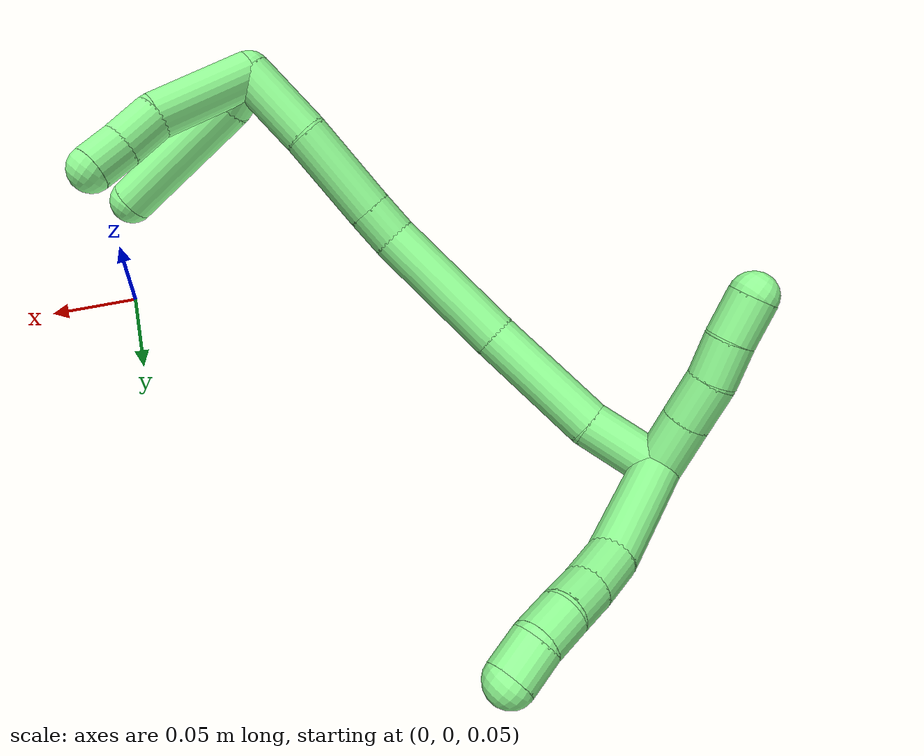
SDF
<sdf version="1.7">
 <world name="default">
  <model name="13">
   <static>0</static>
   <link name="13">
    <collision name="collision-cylinder-e_1_2_8">
     <pose>0.011531 0.019389 -0.023571 -2.45325 0.361226 -0.94234</pose>
     <geometry><cylinder><radius>0.0125</radius><length>0.065252</length></cylinder></geometry>
     <surface>
      <friction><ode><mu>1.16</mu><mu2>1.16</mu2><slip1>0</slip1><slip2>0</slip2></ode></friction>
      <contact><ode><kp>1e+06</kp><kd>1</kd><max_vel>0</max_vel><min_depth>0.001</min_depth></ode></contact>
     </surface>
    </collision>
    <visual name="visual-cylinder-e_1_2_8">
     <pose>0.011531 0.019389 -0.023571 -2.45325 0.361226 -0.94234</pose>
     <geometry><cylinder><radius>0.0125</radius><length>0.065252</length></cylinder></geometry>
     <material><ambient>0.564706 0.984314 0.572549 1</ambient></material>
    </visual>
    <collision name="collision-cylinder-e_2_8_9">
     <pose>0.029436 0.045247 -0.05533 -2.47291 0.548317 -1.36113</pose>
     <geometry><cylinder><radius>0.0125</radius><length>0.024457</length></cylinder></geometry>
     <surface>
      <friction><ode><mu>1.16</mu><mu2>1.16</mu2><slip1>0</slip1><slip2>0</slip2></ode></friction>
      <contact><ode><kp>1e+06</kp><kd>1</kd><max_vel>0</max_vel><min_depth>0.001</min_depth></ode></contact>
     </surface>
    </collision>
    <visual name="visual-cylinder-e_2_8_9">
     <pose>0.029436 0.045247 -0.05533 -2.47291 0.548317 -1.36113</pose>
     <geometry><cylinder><radius>0.0125</radius><length>0.024457</length></cylinder></geometry>
     <material><ambient>0.564706 0.984314 0.572549 1</ambient></material>
    </visual>
    <collision name="collision-cylinder-e_3_9_10">
     <pose>0.041595 0.056809 -0.069938 -2.47092 0.614743 -1.47756</pose>
     <geometry><cylinder><radius>0.0125</radius><length>0.02006</length></cylinder></geometry>
     <surface>
      <friction><ode><mu>1.16</mu><mu2>1.16</mu2><slip1>0</slip1><slip2>0</slip2></ode></friction>
      <contact><ode><kp>1e+06</kp><kd>1</kd><max_vel>0</max_vel><min_depth>0.001</min_depth></ode></contact>
     </surface>
    </collision>
    <visual name="visual-cylinder-e_3_9_10">
     <pose>0.041595 0.056809 -0.069938 -2.47092 0.614743 -1.47756</pose>
     <geometry><cylinder><radius>0.0125</radius><length>0.02006</length></cylinder></geometry>
     <material><ambient>0.564706 0.984314 0.572549 1</ambient></material>
    </visual>
    <collision name="collision-cylinder-e_4_10_11">
     <pose>0.052156 0.066099 -0.084099 -2.6448 0.496937 -1.5711</pose>
     <geometry><cylinder><radius>0.0125</radius><length>0.020038</length></cylinder></geometry>
     <surface>
      <friction><ode><mu>1.16</mu><mu2>1.16</mu2><slip1>0</slip1><slip2>0</slip2></ode></friction>
      <contact><ode><kp>1e+06</kp><kd>1</kd><max_vel>0</max_vel><min_depth>0.001</min_depth></ode></contact>
     </surface>
    </collision>
    <visual name="visual-cylinder-e_4_10_11">
     <pose>0.052156 0.066099 -0.084099 -2.6448 0.496937 -1.5711</pose>
     <geometry><cylinder><radius>0.0125</radius><length>0.020038</length></cylinder></geometry>
     <material><ambient>0.564706 0.984314 0.572549 1</ambient></material>
    </visual>
    <collision name="collision-cylinder-e_5_11_6">
     <pose>0.059065 0.073406 -0.101208 -2.82105 0.21284 -1.16786</pose>
     <geometry><cylinder><radius>0.0125</radius><length>0.020193</length></cylinder></geometry>
     <surface>
      <friction><ode><mu>1.16</mu><mu2>1.16</mu2><slip1>0</slip1><slip2>0</slip2></ode></friction>
      <contact><ode><kp>1e+06</kp><kd>1</kd><max_vel>0</max_vel><min_depth>0.001</min_depth></ode></contact>
     </surface>
    </collision>
    <visual name="visual-cylinder-e_5_11_6">
     <pose>0.059065 0.073406 -0.101208 -2.82105 0.21284 -1.16786</pose>
     <geometry><cylinder><radius>0.0125</radius><length>0.020193</length></cylinder></geometry>
     <material><ambient>0.564706 0.984314 0.572549 1</ambient></material>
    </visual>
    <collision name="collision-cylinder-e_1_2_12">
     <pose>0.004394 0.002337 0.013833 -0.167333 0.303511 -0.025649</pose>
     <geometry><cylinder><radius>0.0125</radius><length>0.029402</length></cylinder></geometry>
     <surface>
      <friction><ode><mu>1.16</mu><mu2>1.16</mu2><slip1>0</slip1><slip2>0</slip2></ode></friction>
      <contact><ode><kp>1e+06</kp><kd>1</kd><max_vel>0</max_vel><min_depth>0.001</min_depth></ode></contact>
     </surface>
    </collision>
    <visual name="visual-cylinder-e_1_2_12">
     <pose>0.004394 0.002337 0.013833 -0.167333 0.303511 -0.025649</pose>
     <geometry><cylinder><radius>0.0125</radius><length>0.029402</length></cylinder></geometry>
     <material><ambient>0.564706 0.984314 0.572549 1</ambient></material>
    </visual>
    <collision name="collision-cylinder-e_2_12_13">
     <pose>0.012506 0.006773 0.039238 -0.179541 0.306212 -0.027779</pose>
     <geometry><cylinder><radius>0.0125</radius><length>0.024669</length></cylinder></geometry>
     <surface>
      <friction><ode><mu>1.16</mu><mu2>1.16</mu2><slip1>0</slip1><slip2>0</slip2></ode></friction>
      <contact><ode><kp>1e+06</kp><kd>1</kd><max_vel>0</max_vel><min_depth>0.001</min_depth></ode></contact>
     </surface>
    </collision>
    <visual name="visual-cylinder-e_2_12_13">
     <pose>0.012506 0.006773 0.039238 -0.179541 0.306212 -0.027779</pose>
     <geometry><cylinder><radius>0.0125</radius><length>0.024669</length></cylinder></geometry>
     <material><ambient>0.564706 0.984314 0.572549 1</ambient></material>
    </visual>
    <collision name="collision-cylinder-e_3_13_14">
     <pose>0.02032 0.009262 0.061084 -0.037799 0.379122 -0.007253</pose>
     <geometry><cylinder><radius>0.0125</radius><length>0.022136</length></cylinder></geometry>
     <surface>
      <friction><ode><mu>1.16</mu><mu2>1.16</mu2><slip1>0</slip1><slip2>0</slip2></ode></friction>
      <contact><ode><kp>1e+06</kp><kd>1</kd><max_vel>0</max_vel><min_depth>0.001</min_depth></ode></contact>
     </surface>
    </collision>
    <visual name="visual-cylinder-e_3_13_14">
     <pose>0.02032 0.009262 0.061084 -0.037799 0.379122 -0.007253</pose>
     <geometry><cylinder><radius>0.0125</radius><length>0.022136</length></cylinder></geometry>
     <material><ambient>0.564706 0.984314 0.572549 1</ambient></material>
    </visual>
    <collision name="collision-cylinder-e_4_14_5">
     <pose>0.027591 0.009901 0.082821 -0.021867 0.270124 -0.002972</pose>
     <geometry><cylinder><radius>0.0125</radius><length>0.023793</length></cylinder></geometry>
     <surface>
      <friction><ode><mu>1.16</mu><mu2>1.16</mu2><slip1>0</slip1><slip2>0</slip2></ode></friction>
      <contact><ode><kp>1e+06</kp><kd>1</kd><max_vel>0</max_vel><min_depth>0.001</min_depth></ode></contact>
     </surface>
    </collision>
    <visual name="visual-cylinder-e_4_14_5">
     <pose>0.027591 0.009901 0.082821 -0.021867 0.270124 -0.002972</pose>
     <geometry><cylinder><radius>0.0125</radius><length>0.023793</length></cylinder></geometry>
     <material><ambient>0.564706 0.984314 0.572549 1</ambient></material>
    </visual>
    <collision name="collision-cylinder-e_1_2_15">
     <pose>0.015806 -0.012513 -0.001891 1.7208 0.895643 1.01858</pose>
     <geometry><cylinder><radius>0.0125</radius><length>0.040496</length></cylinder></geometry>
     <surface>
      <friction><ode><mu>1.16</mu><mu2>1.16</mu2><slip1>0</slip1><slip2>0</slip2></ode></friction>
      <contact><ode><kp>1e+06</kp><kd>1</kd><max_vel>0</max_vel><min_depth>0.001</min_depth></ode></contact>
     </surface>
    </collision>
    <visual name="visual-cylinder-e_1_2_15">
     <pose>0.015806 -0.012513 -0.001891 1.7208 0.895643 1.01858</pose>
     <geometry><cylinder><radius>0.0125</radius><length>0.040496</length></cylinder></geometry>
     <material><ambient>0.564706 0.984314 0.572549 1</ambient></material>
    </visual>
    <collision name="collision-cylinder-e_2_15_16">
     <pose>0.058042 -0.045253 -0.00076 1.42246 0.912259 0.799955</pose>
     <geometry><cylinder><radius>0.0125</radius><length>0.066836</length></cylinder></geometry>
     <surface>
      <friction><ode><mu>1.16</mu><mu2>1.16</mu2><slip1>0</slip1><slip2>0</slip2></ode></friction>
      <contact><ode><kp>1e+06</kp><kd>1</kd><max_vel>0</max_vel><min_depth>0.001</min_depth></ode></contact>
     </surface>
    </collision>
    <visual name="visual-cylinder-e_2_15_16">
     <pose>0.058042 -0.045253 -0.00076 1.42246 0.912259 0.799955</pose>
     <geometry><cylinder><radius>0.0125</radius><length>0.066836</length></cylinder></geometry>
     <material><ambient>0.564706 0.984314 0.572549 1</ambient></material>
    </visual>
    <collision name="collision-cylinder-e_3_16_17">
     <pose>0.116053 -0.086169 0.006721 1.35855 0.980361 0.813678</pose>
     <geometry><cylinder><radius>0.0125</radius><length>0.076034</length></cylinder></geometry>
     <surface>
      <friction><ode><mu>1.16</mu><mu2>1.16</mu2><slip1>0</slip1><slip2>0</slip2></ode></friction>
      <contact><ode><kp>1e+06</kp><kd>1</kd><max_vel>0</max_vel><min_depth>0.001</min_depth></ode></contact>
     </surface>
    </collision>
    <visual name="visual-cylinder-e_3_16_17">
     <pose>0.116053 -0.086169 0.006721 1.35855 0.980361 0.813678</pose>
     <geometry><cylinder><radius>0.0125</radius><length>0.076034</length></cylinder></geometry>
     <material><ambient>0.564706 0.984314 0.572549 1</ambient></material>
    </visual>
    <collision name="collision-cylinder-e_4_17_18">
     <pose>0.156689 -0.110755 0.013055 1.12223 1.1253 0.754738</pose>
     <geometry><cylinder><radius>0.0125</radius><length>0.02007</length></cylinder></geometry>
     <surface>
      <friction><ode><mu>1.16</mu><mu2>1.16</mu2><slip1>0</slip1><slip2>0</slip2></ode></friction>
      <contact><ode><kp>1e+06</kp><kd>1</kd><max_vel>0</max_vel><min_depth>0.001</min_depth></ode></contact>
     </surface>
    </collision>
    <visual name="visual-cylinder-e_4_17_18">
     <pose>0.156689 -0.110755 0.013055 1.12223 1.1253 0.754738</pose>
     <geometry><cylinder><radius>0.0125</radius><length>0.02007</length></cylinder></geometry>
     <material><ambient>0.564706 0.984314 0.572549 1</ambient></material>
    </visual>
    <collision name="collision-cylinder-e_5_18_19">
     <pose>0.189477 -0.124141 0.020383 1.04926 1.13869 0.709481</pose>
     <geometry><cylinder><radius>0.0125</radius><length>0.05227</length></cylinder></geometry>
     <surface>
      <friction><ode><mu>1.16</mu><mu2>1.16</mu2><slip1>0</slip1><slip2>0</slip2></ode></friction>
      <contact><ode><kp>1e+06</kp><kd>1</kd><max_vel>0</max_vel><min_depth>0.001</min_depth></ode></contact>
     </surface>
    </collision>
    <visual name="visual-cylinder-e_5_18_19">
     <pose>0.189477 -0.124141 0.020383 1.04926 1.13869 0.709481</pose>
     <geometry><cylinder><radius>0.0125</radius><length>0.05227</length></cylinder></geometry>
     <material><ambient>0.564706 0.984314 0.572549 1</ambient></material>
    </visual>
    <collision name="collision-cylinder-e_6_19_1">
     <pose>0.232326 -0.144246 0.029356 1.2506 1.04144 0.785114</pose>
     <geometry><cylinder><radius>0.0125</radius><length>0.044293</length></cylinder></geometry>
     <surface>
      <friction><ode><mu>1.16</mu><mu2>1.16</mu2><slip1>0</slip1><slip2>0</slip2></ode></friction>
      <contact><ode><kp>1e+06</kp><kd>1</kd><max_vel>0</max_vel><min_depth>0.001</min_depth></ode></contact>
     </surface>
    </collision>
    <visual name="visual-cylinder-e_6_19_1">
     <pose>0.232326 -0.144246 0.029356 1.2506 1.04144 0.785114</pose>
     <geometry><cylinder><radius>0.0125</radius><length>0.044293</length></cylinder></geometry>
     <material><ambient>0.564706 0.984314 0.572549 1</ambient></material>
    </visual>
    <collision name="collision-cylinder-e_1_1_20">
     <pose>0.249624 -0.159059 0.02335 2.72654 -0.172794 -0.780506</pose>
     <geometry><cylinder><radius>0.0125</radius><length>0.021133</length></cylinder></geometry>
     <surface>
      <friction><ode><mu>1.16</mu><mu2>1.16</mu2><slip1>0</slip1><slip2>0</slip2></ode></friction>
      <contact><ode><kp>1e+06</kp><kd>1</kd><max_vel>0</max_vel><min_depth>0.001</min_depth></ode></contact>
     </surface>
    </collision>
    <visual name="visual-cylinder-e_1_1_20">
     <pose>0.249624 -0.159059 0.02335 2.72654 -0.172794 -0.780506</pose>
     <geometry><cylinder><radius>0.0125</radius><length>0.021133</length></cylinder></geometry>
     <material><ambient>0.564706 0.984314 0.572549 1</ambient></material>
    </visual>
    <collision name="collision-cylinder-e_2_20_4">
     <pose>0.251583 -0.173323 -0.024114 2.88224 0.095882 0.705057</pose>
     <geometry><cylinder><radius>0.0125</radius><length>0.078867</length></cylinder></geometry>
     <surface>
      <friction><ode><mu>1.16</mu><mu2>1.16</mu2><slip1>0</slip1><slip2>0</slip2></ode></friction>
      <contact><ode><kp>1e+06</kp><kd>1</kd><max_vel>0</max_vel><min_depth>0.001</min_depth></ode></contact>
     </surface>
    </collision>
    <visual name="visual-cylinder-e_2_20_4">
     <pose>0.251583 -0.173323 -0.024114 2.88224 0.095882 0.705057</pose>
     <geometry><cylinder><radius>0.0125</radius><length>0.078867</length></cylinder></geometry>
     <material><ambient>0.564706 0.984314 0.572549 1</ambient></material>
    </visual>
    <collision name="collision-cylinder-e_1_1_21">
     <pose>0.265668 -0.15055 0.009 -2.96293 0.530352 -2.50441</pose>
     <geometry><cylinder><radius>0.0125</radius><length>0.056252</length></cylinder></geometry>
     <surface>
      <friction><ode><mu>1.16</mu><mu2>1.16</mu2><slip1>0</slip1><slip2>0</slip2></ode></friction>
      <contact><ode><kp>1e+06</kp><kd>1</kd><max_vel>0</max_vel><min_depth>0.001</min_depth></ode></contact>
     </surface>
    </collision>
    <visual name="visual-cylinder-e_1_1_21">
     <pose>0.265668 -0.15055 0.009 -2.96293 0.530352 -2.50441</pose>
     <geometry><cylinder><radius>0.0125</radius><length>0.056252</length></cylinder></geometry>
     <material><ambient>0.564706 0.984314 0.572549 1</ambient></material>
    </visual>
    <collision name="collision-cylinder-e_2_21_22">
     <pose>0.28303 -0.143045 -0.025856 -2.85862 0.267581 -1.51419</pose>
     <geometry><cylinder><radius>0.0125</radius><length>0.023714</length></cylinder></geometry>
     <surface>
      <friction><ode><mu>1.16</mu><mu2>1.16</mu2><slip1>0</slip1><slip2>0</slip2></ode></friction>
      <contact><ode><kp>1e+06</kp><kd>1</kd><max_vel>0</max_vel><min_depth>0.001</min_depth></ode></contact>
     </surface>
    </collision>
    <visual name="visual-cylinder-e_2_21_22">
     <pose>0.28303 -0.143045 -0.025856 -2.85862 0.267581 -1.51419</pose>
     <geometry><cylinder><radius>0.0125</radius><length>0.023714</length></cylinder></geometry>
     <material><ambient>0.564706 0.984314 0.572549 1</ambient></material>
    </visual>
    <collision name="collision-cylinder-e_3_22_3">
     <pose>0.289325 -0.136703 -0.045805 -2.80388 0.320924 -1.51889</pose>
     <geometry><cylinder><radius>0.0125</radius><length>0.020034</length></cylinder></geometry>
     <surface>
      <friction><ode><mu>1.16</mu><mu2>1.16</mu2><slip1>0</slip1><slip2>0</slip2></ode></friction>
      <contact><ode><kp>1e+06</kp><kd>1</kd><max_vel>0</max_vel><min_depth>0.001</min_depth></ode></contact>
     </surface>
    </collision>
    <visual name="visual-cylinder-e_3_22_3">
     <pose>0.289325 -0.136703 -0.045805 -2.80388 0.320924 -1.51889</pose>
     <geometry><cylinder><radius>0.0125</radius><length>0.020034</length></cylinder></geometry>
     <material><ambient>0.564706 0.984314 0.572549 1</ambient></material>
    </visual>
    <collision name="collision-sphere-3">
     <pose>0.292485 -0.133553 -0.054774 0 -0 0</pose>
     <geometry><sphere><radius>0.0125</radius></sphere></geometry>
     <surface>
      <friction><ode><mu>1.16</mu><mu2>1.16</mu2><slip1>0</slip1><slip2>0</slip2></ode></friction>
      <contact><ode><kp>1e+06</kp><kd>1</kd><max_vel>0</max_vel><min_depth>0.001</min_depth></ode></contact>
     </surface>
    </collision>
    <visual name="visual-sphere-3">
     <pose>0.292485 -0.133553 -0.054774 0 -0 0</pose>
     <geometry><sphere><radius>0.0125</radius></sphere></geometry>
     <material><ambient>0.564706 0.984314 0.572549 1</ambient></material>
    </visual>
    <collision name="collision-sphere-22">
     <pose>0.286165 -0.139852 -0.036837 0 -0 0</pose>
     <geometry><sphere><radius>0.0125</radius></sphere></geometry>
     <surface>
      <friction><ode><mu>1.16</mu><mu2>1.16</mu2><slip1>0</slip1><slip2>0</slip2></ode></friction>
      <contact><ode><kp>1e+06</kp><kd>1</kd><max_vel>0</max_vel><min_depth>0.001</min_depth></ode></contact>
     </surface>
    </collision>
    <visual name="visual-sphere-22">
     <pose>0.286165 -0.139852 -0.036837 0 -0 0</pose>
     <geometry><sphere><radius>0.0125</radius></sphere></geometry>
     <material><ambient>0.564706 0.984314 0.572549 1</ambient></material>
    </visual>
    <collision name="collision-sphere-21">
     <pose>0.279895 -0.146238 -0.014876 0 -0 0</pose>
     <geometry><sphere><radius>0.0125</radius></sphere></geometry>
     <surface>
      <friction><ode><mu>1.16</mu><mu2>1.16</mu2><slip1>0</slip1><slip2>0</slip2></ode></friction>
      <contact><ode><kp>1e+06</kp><kd>1</kd><max_vel>0</max_vel><min_depth>0.001</min_depth></ode></contact>
     </surface>
    </collision>
    <visual name="visual-sphere-21">
     <pose>0.279895 -0.146238 -0.014876 0 -0 0</pose>
     <geometry><sphere><radius>0.0125</radius></sphere></geometry>
     <material><ambient>0.564706 0.984314 0.572549 1</ambient></material>
    </visual>
    <collision name="collision-sphere-4">
     <pose>0.255358 -0.18339 -0.062054 0 -0 0</pose>
     <geometry><sphere><radius>0.0125</radius></sphere></geometry>
     <surface>
      <friction><ode><mu>1.16</mu><mu2>1.16</mu2><slip1>0</slip1><slip2>0</slip2></ode></friction>
      <contact><ode><kp>1e+06</kp><kd>1</kd><max_vel>0</max_vel><min_depth>0.001</min_depth></ode></contact>
     </surface>
    </collision>
    <visual name="visual-sphere-4">
     <pose>0.255358 -0.18339 -0.062054 0 -0 0</pose>
     <geometry><sphere><radius>0.0125</radius></sphere></geometry>
     <material><ambient>0.564706 0.984314 0.572549 1</ambient></material>
    </visual>
    <collision name="collision-sphere-20">
     <pose>0.247807 -0.163256 0.013825 0 -0 0</pose>
     <geometry><sphere><radius>0.0125</radius></sphere></geometry>
     <surface>
      <friction><ode><mu>1.16</mu><mu2>1.16</mu2><slip1>0</slip1><slip2>0</slip2></ode></friction>
      <contact><ode><kp>1e+06</kp><kd>1</kd><max_vel>0</max_vel><min_depth>0.001</min_depth></ode></contact>
     </surface>
    </collision>
    <visual name="visual-sphere-20">
     <pose>0.247807 -0.163256 0.013825 0 -0 0</pose>
     <geometry><sphere><radius>0.0125</radius></sphere></geometry>
     <material><ambient>0.564706 0.984314 0.572549 1</ambient></material>
    </visual>
    <collision name="collision-sphere-6">
     <pose>0.061198 0.076516 -0.110573 0 -0 0</pose>
     <geometry><sphere><radius>0.0125</radius></sphere></geometry>
     <surface>
      <friction><ode><mu>1.16</mu><mu2>1.16</mu2><slip1>0</slip1><slip2>0</slip2></ode></friction>
      <contact><ode><kp>1e+06</kp><kd>1</kd><max_vel>0</max_vel><min_depth>0.001</min_depth></ode></contact>
     </surface>
    </collision>
    <visual name="visual-sphere-6">
     <pose>0.061198 0.076516 -0.110573 0 -0 0</pose>
     <geometry><sphere><radius>0.0125</radius></sphere></geometry>
     <material><ambient>0.564706 0.984314 0.572549 1</ambient></material>
    </visual>
    <collision name="collision-sphere-11">
     <pose>0.056932 0.070297 -0.091842 0 -0 0</pose>
     <geometry><sphere><radius>0.0125</radius></sphere></geometry>
     <surface>
      <friction><ode><mu>1.16</mu><mu2>1.16</mu2><slip1>0</slip1><slip2>0</slip2></ode></friction>
      <contact><ode><kp>1e+06</kp><kd>1</kd><max_vel>0</max_vel><min_depth>0.001</min_depth></ode></contact>
     </surface>
    </collision>
    <visual name="visual-sphere-11">
     <pose>0.056932 0.070297 -0.091842 0 -0 0</pose>
     <geometry><sphere><radius>0.0125</radius></sphere></geometry>
     <material><ambient>0.564706 0.984314 0.572549 1</ambient></material>
    </visual>
    <collision name="collision-sphere-10">
     <pose>0.047379 0.061902 -0.076357 0 -0 0</pose>
     <geometry><sphere><radius>0.0125</radius></sphere></geometry>
     <surface>
      <friction><ode><mu>1.16</mu><mu2>1.16</mu2><slip1>0</slip1><slip2>0</slip2></ode></friction>
      <contact><ode><kp>1e+06</kp><kd>1</kd><max_vel>0</max_vel><min_depth>0.001</min_depth></ode></contact>
     </surface>
    </collision>
    <visual name="visual-sphere-10">
     <pose>0.047379 0.061902 -0.076357 0 -0 0</pose>
     <geometry><sphere><radius>0.0125</radius></sphere></geometry>
     <material><ambient>0.564706 0.984314 0.572549 1</ambient></material>
    </visual>
    <collision name="collision-sphere-9">
     <pose>0.03581 0.051716 -0.063519 0 -0 0</pose>
     <geometry><sphere><radius>0.0125</radius></sphere></geometry>
     <surface>
      <friction><ode><mu>1.16</mu><mu2>1.16</mu2><slip1>0</slip1><slip2>0</slip2></ode></friction>
      <contact><ode><kp>1e+06</kp><kd>1</kd><max_vel>0</max_vel><min_depth>0.001</min_depth></ode></contact>
     </surface>
    </collision>
    <visual name="visual-sphere-9">
     <pose>0.03581 0.051716 -0.063519 0 -0 0</pose>
     <geometry><sphere><radius>0.0125</radius></sphere></geometry>
     <material><ambient>0.564706 0.984314 0.572549 1</ambient></material>
    </visual>
    <collision name="collision-sphere-2">
     <geometry><sphere><radius>0.0125</radius></sphere></geometry>
     <surface>
      <friction><ode><mu>1.16</mu><mu2>1.16</mu2><slip1>0</slip1><slip2>0</slip2></ode></friction>
      <contact><ode><kp>1e+06</kp><kd>1</kd><max_vel>0</max_vel><min_depth>0.001</min_depth></ode></contact>
     </surface>
    </collision>
    <visual name="visual-sphere-2">
     <geometry><sphere><radius>0.0125</radius></sphere></geometry>
     <material><ambient>0.564706 0.984314 0.572549 1</ambient></material>
    </visual>
    <collision name="collision-sphere-19">
     <pose>0.21321 -0.133631 0.025836 0 -0 0</pose>
     <geometry><sphere><radius>0.0125</radius></sphere></geometry>
     <surface>
      <friction><ode><mu>1.16</mu><mu2>1.16</mu2><slip1>0</slip1><slip2>0</slip2></ode></friction>
      <contact><ode><kp>1e+06</kp><kd>1</kd><max_vel>0</max_vel><min_depth>0.001</min_depth></ode></contact>
     </surface>
    </collision>
    <visual name="visual-sphere-19">
     <pose>0.21321 -0.133631 0.025836 0 -0 0</pose>
     <geometry><sphere><radius>0.0125</radius></sphere></geometry>
     <material><ambient>0.564706 0.984314 0.572549 1</ambient></material>
    </visual>
    <collision name="collision-sphere-8">
     <pose>0.023062 0.038777 -0.047142 0 -0 0</pose>
     <geometry><sphere><radius>0.0125</radius></sphere></geometry>
     <surface>
      <friction><ode><mu>1.16</mu><mu2>1.16</mu2><slip1>0</slip1><slip2>0</slip2></ode></friction>
      <contact><ode><kp>1e+06</kp><kd>1</kd><max_vel>0</max_vel><min_depth>0.001</min_depth></ode></contact>
     </surface>
    </collision>
    <visual name="visual-sphere-8">
     <pose>0.023062 0.038777 -0.047142 0 -0 0</pose>
     <geometry><sphere><radius>0.0125</radius></sphere></geometry>
     <material><ambient>0.564706 0.984314 0.572549 1</ambient></material>
    </visual>
    <collision name="collision-sphere-12">
     <pose>0.008787 0.004673 0.027666 0 -0 0</pose>
     <geometry><sphere><radius>0.0125</radius></sphere></geometry>
     <surface>
      <friction><ode><mu>1.16</mu><mu2>1.16</mu2><slip1>0</slip1><slip2>0</slip2></ode></friction>
      <contact><ode><kp>1e+06</kp><kd>1</kd><max_vel>0</max_vel><min_depth>0.001</min_depth></ode></contact>
     </surface>
    </collision>
    <visual name="visual-sphere-12">
     <pose>0.008787 0.004673 0.027666 0 -0 0</pose>
     <geometry><sphere><radius>0.0125</radius></sphere></geometry>
     <material><ambient>0.564706 0.984314 0.572549 1</ambient></material>
    </visual>
    <collision name="collision-sphere-13">
     <pose>0.016224 0.008874 0.050809 0 -0 0</pose>
     <geometry><sphere><radius>0.0125</radius></sphere></geometry>
     <surface>
      <friction><ode><mu>1.16</mu><mu2>1.16</mu2><slip1>0</slip1><slip2>0</slip2></ode></friction>
      <contact><ode><kp>1e+06</kp><kd>1</kd><max_vel>0</max_vel><min_depth>0.001</min_depth></ode></contact>
     </surface>
    </collision>
    <visual name="visual-sphere-13">
     <pose>0.016224 0.008874 0.050809 0 -0 0</pose>
     <geometry><sphere><radius>0.0125</radius></sphere></geometry>
     <material><ambient>0.564706 0.984314 0.572549 1</ambient></material>
    </visual>
    <collision name="collision-sphere-14">
     <pose>0.024417 0.009651 0.071359 0 -0 0</pose>
     <geometry><sphere><radius>0.0125</radius></sphere></geometry>
     <surface>
      <friction><ode><mu>1.16</mu><mu2>1.16</mu2><slip1>0</slip1><slip2>0</slip2></ode></friction>
      <contact><ode><kp>1e+06</kp><kd>1</kd><max_vel>0</max_vel><min_depth>0.001</min_depth></ode></contact>
     </surface>
    </collision>
    <visual name="visual-sphere-14">
     <pose>0.024417 0.009651 0.071359 0 -0 0</pose>
     <geometry><sphere><radius>0.0125</radius></sphere></geometry>
     <material><ambient>0.564706 0.984314 0.572549 1</ambient></material>
    </visual>
    <collision name="collision-sphere-5">
     <pose>0.030766 0.010152 0.094284 0 -0 0</pose>
     <geometry><sphere><radius>0.0125</radius></sphere></geometry>
     <surface>
      <friction><ode><mu>1.16</mu><mu2>1.16</mu2><slip1>0</slip1><slip2>0</slip2></ode></friction>
      <contact><ode><kp>1e+06</kp><kd>1</kd><max_vel>0</max_vel><min_depth>0.001</min_depth></ode></contact>
     </surface>
    </collision>
    <visual name="visual-sphere-5">
     <pose>0.030766 0.010152 0.094284 0 -0 0</pose>
     <geometry><sphere><radius>0.0125</radius></sphere></geometry>
     <material><ambient>0.564706 0.984314 0.572549 1</ambient></material>
    </visual>
    <collision name="collision-sphere-15">
     <pose>0.031612 -0.025027 -0.003782 0 -0 0</pose>
     <geometry><sphere><radius>0.0125</radius></sphere></geometry>
     <surface>
      <friction><ode><mu>1.16</mu><mu2>1.16</mu2><slip1>0</slip1><slip2>0</slip2></ode></friction>
      <contact><ode><kp>1e+06</kp><kd>1</kd><max_vel>0</max_vel><min_depth>0.001</min_depth></ode></contact>
     </surface>
    </collision>
    <visual name="visual-sphere-15">
     <pose>0.031612 -0.025027 -0.003782 0 -0 0</pose>
     <geometry><sphere><radius>0.0125</radius></sphere></geometry>
     <material><ambient>0.564706 0.984314 0.572549 1</ambient></material>
    </visual>
    <collision name="collision-sphere-16">
     <pose>0.084472 -0.065479 0.002263 0 -0 0</pose>
     <geometry><sphere><radius>0.0125</radius></sphere></geometry>
     <surface>
      <friction><ode><mu>1.16</mu><mu2>1.16</mu2><slip1>0</slip1><slip2>0</slip2></ode></friction>
      <contact><ode><kp>1e+06</kp><kd>1</kd><max_vel>0</max_vel><min_depth>0.001</min_depth></ode></contact>
     </surface>
    </collision>
    <visual name="visual-sphere-16">
     <pose>0.084472 -0.065479 0.002263 0 -0 0</pose>
     <geometry><sphere><radius>0.0125</radius></sphere></geometry>
     <material><ambient>0.564706 0.984314 0.572549 1</ambient></material>
    </visual>
    <collision name="collision-sphere-17">
     <pose>0.147633 -0.106859 0.01118 0 -0 0</pose>
     <geometry><sphere><radius>0.0125</radius></sphere></geometry>
     <surface>
      <friction><ode><mu>1.16</mu><mu2>1.16</mu2><slip1>0</slip1><slip2>0</slip2></ode></friction>
      <contact><ode><kp>1e+06</kp><kd>1</kd><max_vel>0</max_vel><min_depth>0.001</min_depth></ode></contact>
     </surface>
    </collision>
    <visual name="visual-sphere-17">
     <pose>0.147633 -0.106859 0.01118 0 -0 0</pose>
     <geometry><sphere><radius>0.0125</radius></sphere></geometry>
     <material><ambient>0.564706 0.984314 0.572549 1</ambient></material>
    </visual>
    <collision name="collision-sphere-18">
     <pose>0.165744 -0.114651 0.01493 0 -0 0</pose>
     <geometry><sphere><radius>0.0125</radius></sphere></geometry>
     <surface>
      <friction><ode><mu>1.16</mu><mu2>1.16</mu2><slip1>0</slip1><slip2>0</slip2></ode></friction>
      <contact><ode><kp>1e+06</kp><kd>1</kd><max_vel>0</max_vel><min_depth>0.001</min_depth></ode></contact>
     </surface>
    </collision>
    <visual name="visual-sphere-18">
     <pose>0.165744 -0.114651 0.01493 0 -0 0</pose>
     <geometry><sphere><radius>0.0125</radius></sphere></geometry>
     <material><ambient>0.564706 0.984314 0.572549 1</ambient></material>
    </visual>
    <collision name="collision-sphere-1">
     <pose>0.251441 -0.154861 0.032876 0 -0 0</pose>
     <geometry><sphere><radius>0.0125</radius></sphere></geometry>
     <surface>
      <friction><ode><mu>1.16</mu><mu2>1.16</mu2><slip1>0</slip1><slip2>0</slip2></ode></friction>
      <contact><ode><kp>1e+06</kp><kd>1</kd><max_vel>0</max_vel><min_depth>0.001</min_depth></ode></contact>
     </surface>
    </collision>
    <visual name="visual-sphere-1">
     <pose>0.251441 -0.154861 0.032876 0 -0 0</pose>
     <geometry><sphere><radius>0.0125</radius></sphere></geometry>
     <material><ambient>0.564706 0.984314 0.572549 1</ambient></material>
    </visual>
    <inertial>
     <pose>0.12712 -0.066426 -0.003663 0 -0 0</pose>
     <mass>0.75</mass>
     <inertia><ixx>0.000144</ixx><ixy>0</ixy><ixz>0</ixz><iyy>8e-05</iyy><iyz>0</iyz><izz>-8.2e-05</izz></inertia>
    </inertial>
   </link>
   <pose>-0.255305 0.192287 0.081306 0.798928 -0.731829 -0.436194</pose>
  </model>
 </world>
</sdf>
